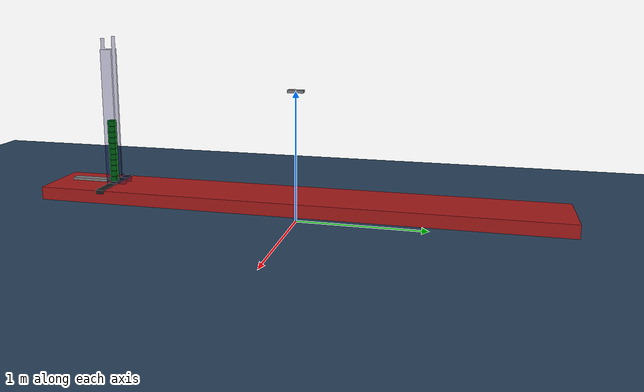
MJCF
<mujoco model="ur5e scene">
<!-- ENGINE SETUP -->
  <compiler angle="radian" meshdir="universal_robots_ur5e/assets" autolimits="true"/>
  <option timestep="0.0001" integrator="Euler" >
    <flag multiccd="enable"/>
  </option>
  <statistic center="0.3 0 0.4" extent="3"/>

  <include file="objects.xml"/>

<!-- Defaults -->
  <default class="main">
    <default class="small_enc">
      <geom size="0.01 0.01 0.56" type="box" rgba="0 0 0.3 0.3" condim="3" friction="0.05 0.005 0.0001" solref="0.006 1"/>
    </default>
    <default class="large_enc">
      <geom size="0.01 0.04 0.53" type="box" rgba="0 0 0.3 0.3" condim="3" friction="0.05 0.005 0.0001" solref="0.006 1"/>
    </default>

    <default class="circularItems">
      <geom type="cylinder" size="0.035 0.02 0" rgba="0 0.5 0 1" mass="0.1" solref="0.006 1"  condim="1"/>
      <joint type="free"/>
    </default>

  </default>

<!-- Actuators -->
  <actuator>
    <position name="pusher" joint="pusher_joint" ctrlrange="0.01 0.1" kp="1000"/>
    <position name="slide_x" joint="slide_x" ctrlrange="-0.25 0.25" kp="1000"/>
  </actuator>
<!-- Lighting -->
  <visual>
    <headlight diffuse="0.6 0.6 0.6" ambient="0.1 0.1 0.1" specular="0 0 0"/>
    <rgba haze="0.15 0.25 0.35 1"/>
    <global azimuth="120" elevation="-20" offwidth="640" offheight="480"/>
  </visual>

<!-- Assets -->
  <asset>
    <texture type="skybox" builtin="gradient" rgb1="0.3 0.5 0.7" rgb2="0 0 0" width="512" height="3072"/>
    <texture type="2d" name="groundplane" builtin="checker" mark="edge" rgb1="0.2 0.3 0.4" rgb2="0.1 0.2 0.3"
      markrgb="0.8 0.8 0.8" width="300" height="300"/>
    <material name="groundplane" texture="groundplane" texuniform="true" texrepeat="5 5" reflectance="0.2"/>

    <texture type="2d" name="conveyor" builtin="gradient" mark="edge" rgb1="0.5 0.1 0.1" rgb2="0.8 0.1 0.1"
      markrgb="0.8 0.8 0.8" width="300" height="300"/>
    <material name="conveyor" texture="conveyor" texuniform="true" texrepeat="5 5" reflectance="0.2"/>
  </asset>

    <!-- MODEL TREE STARTS HERE -->
  <worldbody>
    <light pos="0 0 1.5" dir="0 0 -1" directional="true"/>
    <geom name="floor" size="0 0 0.05" type="plane" material="groundplane" condim="3"/>

    <!-- Camera model -->
    <body pos="0 0 1" euler="0 0 1.5708">
      <geom size="0.06 0.03 0.01" type="box"/>
      <camera name="rgbcam" mode="fixed" fovy="48.8"/>
    </body>

    <!-- Conveyor -->
    <body pos="0 0 0.2">
      <!-- Conveyor top surface -->
      <geom name="conveyor_geom" pos="0 0 -0.04" size="0.25 2 0.05" type="box" material="conveyor" condim="1" solref="0.006 1"/>
      <geom name="conveyor_friction_strip" pos="0 -1.5 0" size="0.25 0.035 0.015" type="box" rgba="0.1 0.1 0.1 1" friction="0.6 0.005 0.0001" condim="3" solref="0.006 1"/>

      <body>
        <!-- Mobile platform -->
        <body>
          <!-- pusher plate -->
          <geom size="0.03 0.15 0.01" pos="0 -1.7 0.033" type="box" condim="1" solref="0.006 1"/>
          <joint name="pusher_joint" type="slide" axis="0 1 0" damping="50"/>
        </body>

        <body childclass="small_enc">
          <!-- Enclosure for circularItems -->
          <geom pos="0 -1.545 0.605"/>
          <geom pos="0 -1.454 0.62"/>
        </body>

        <body childclass="large_enc">
          <!-- Enclosure for circularItems -->
          <geom pos="0.04525 -1.5 0.55"/>
          <geom pos="-0.04525 -1.5 0.55"/>

          <!-- Guide  -->
          <geom pos="0.04525 -1.42 0.045" size="0.01 0.04 0.025"  condim="1"/>
          <geom pos="-0.04525 -1.42 0.045" size="0.01 0.04 0.025"  condim="1"/>

        </body>

        <!-- platform slider -->
        <joint name="slide_x" type="slide" axis="1 0 0" damping="100"/>
      </body>

    </body>

  </worldbody>

</mujoco>

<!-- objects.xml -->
<mujoco model="ur5e scene">
<!-- ENGINE SETUP -->

    <!-- MODEL TREE STARTS HERE -->
  <worldbody>

    <!-- bunch of circularItems -->
    <body pos="0 -1.5 0.25" childclass="circularItems"> <geom/><joint/> </body>
    <body pos="0 -1.5 0.295" childclass="circularItems"> <geom/><joint/> </body>
    <body pos="0 -1.5 0.33999999999999997" childclass="circularItems"> <geom/><joint/> </body>
    <body pos="0 -1.5 0.38499999999999995" childclass="circularItems"> <geom/><joint/> </body>
    <body pos="0 -1.5 0.42999999999999994" childclass="circularItems"> <geom/><joint/> </body>
    <body pos="0 -1.5 0.4749999999999999" childclass="circularItems"> <geom/><joint/> </body>
    <body pos="0 -1.5 0.5199999999999999" childclass="circularItems"> <geom/><joint/> </body>
    <body pos="0 -1.5 0.565" childclass="circularItems"> <geom/><joint/> </body>
    <body pos="0 -1.5 0.61" childclass="circularItems"> <geom/><joint/> </body>
    <body pos="0 -1.5 0.655" childclass="circularItems"> <geom/><joint/> </body>
    <body pos="0 -1.5 0.7000000000000001" childclass="circularItems"> <geom/><joint/> </body>

    <!-- solo dappa -->

  </worldbody>

</mujoco>
